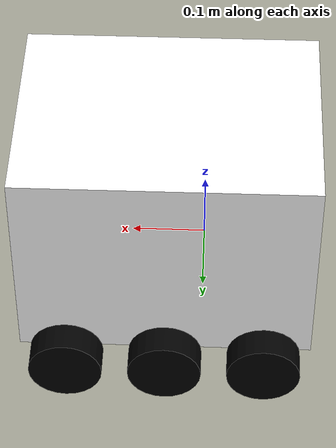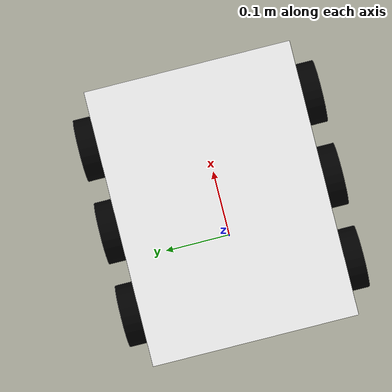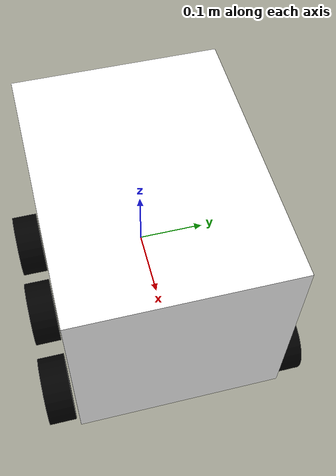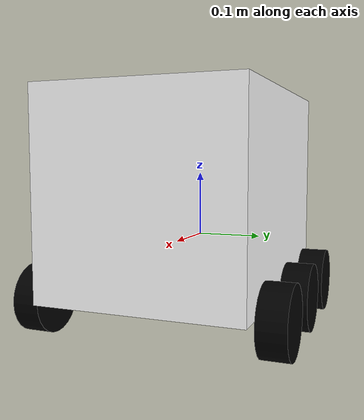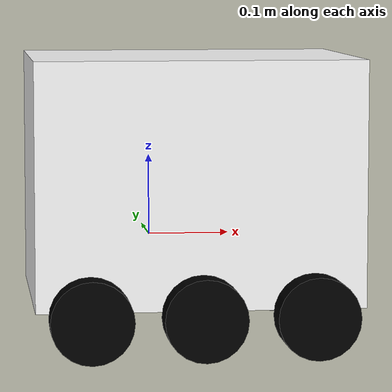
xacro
<?xml version="1.0"?>
<robot xmlns:xacro="http://www.ros.org/wiki/xacro">

    <xacro:include filename="inertial_macros.xacro"/>

    <material name="white">
        <color rgba="1 1 1 1" />
    </material>

    <material name="orange">
        <color rgba="1 0.3 0.1 1" />
    </material>

    <material name="blue">
        <color rgba="0.2 0.2 1 1" />
    </material>

    <material name="black">
        <color rgba="0 0 0 1"/>
    </material>

    <material name="red">
        <color rgba="1 0 0 1"/>
    </material>

    <material name="brown">
        <color rgba="0.6 0.2 0.2 1"/>
    </material>
    <material name="green">
        <color rgba="0 1 0 1"/>
    </material>

    <!-- Base link -->
    <link name="base_link">
    </link>

    <!-- Chassis link -->

    <joint name="chassis_joint" type="fixed">
        <parent link="base_link"/>
        <child link="chassis"/>
        <origin xyz="-0.1 0 0"/>
    </joint>

    <link name="chassis">
        <visual>
            <origin xyz="0.15 0 0.075"/>
            <geometry>
                <box size="0.4 0.3 0.3"/>
            </geometry>
            <material name="white"/>
        </visual>
        <collision>
            <origin xyz="0.15 0 0.075"/>
            <geometry>
                <box size="0.4 0.3 0.3"/>
            </geometry>
        </collision>
        <xacro:inertial_box mass = "0.5" x = "0.4" y="0.3" z = "0.3">
            <origin xyz = "0.15 0 0.075" rpy="0 0 0"/>
        </xacro:inertial_box>
    </link>

    <gazebo reference="chassis">
        <material>Gazebo/Red</material>
    </gazebo>

<!-- front_left wheel link -->

    <joint name="front_left_wheel_joint" type="continuous">
        <parent link="chassis"/>
        <child link="front_left_wheel"/>
        <origin xyz="0.285 0.175 -0.08" rpy="-${pi/2} 0 0"/>
        <axis xyz="0 0 1"/>
    </joint>

    <link name="front_left_wheel">
        <visual>
            <geometry>
                <cylinder radius="0.05" length="0.04"/>
            </geometry>
            <material name="black"/>
        </visual>

        <collision>
            <geometry>
                <cylinder radius="0.05" length="0.04"/>
            </geometry>
        </collision>
        <xacro:inertial_cylinder mass="0.1" length="0.04" radius="0.05">
            <origin xyz="0 0 0" rpy="0 0 0"/>
        </xacro:inertial_cylinder>

    </link>

    <gazebo reference="front_left_wheel">
        <material>Gazebo/Blue</material>
    </gazebo>

<!-- front Right wheel link -->

    <joint name="front_right_wheel_joint" type="continuous">
        <parent link="chassis"/>
        <child link="front_right_wheel"/>
        <origin xyz="0.285 -0.175 -0.08" rpy="${pi/2} 0 0"/>
        <axis xyz="0 0 -1"/>
    </joint>

    <link name="front_right_wheel">
        <visual>
            <geometry>
                <cylinder radius="0.05" length="0.04"/>
            </geometry>
            <material name="black"/>
        </visual>

        <collision>
            <geometry>
                <cylinder radius="0.05" length="0.04"/>
            </geometry>
        </collision>
        <xacro:inertial_cylinder mass="0.1" length="0.04" radius="0.05">
            <origin xyz="0 0 0" rpy="0 0 0"/>
        </xacro:inertial_cylinder>

    </link>

    <gazebo reference="front_right_wheel">
        <material>Gazebo/Blue</material>
    </gazebo>

    <!-- middle_left wheel link -->

    <joint name="middle_left_wheel_joint" type="continuous">
        <parent link="chassis"/>
        <child link="middle_left_wheel"/>
        <origin xyz="0.150 0.175 -0.08" rpy="-${pi/2} 0 0"/>
        <axis xyz="0 0 1"/>
    </joint>

    <link name="middle_left_wheel">
        <visual>
            <geometry>
                <cylinder radius="0.05" length="0.04"/>
            </geometry>
            <material name="black"/>
        </visual>

        <collision>
            <geometry>
                <cylinder radius="0.05" length="0.04"/>
            </geometry>
        </collision>
        <xacro:inertial_cylinder mass="0.1" length="0.04" radius="0.05">
            <origin xyz="0 0 0" rpy="0 0 0"/>
        </xacro:inertial_cylinder>

    </link>

    <gazebo reference="middle_left_wheel">
        <material>Gazebo/Blue</material>
    </gazebo>

<!-- middle Right wheel link -->

    <joint name="middle_right_wheel_joint" type="continuous">
        <parent link="chassis"/>
        <child link="middle_right_wheel"/>
        <origin xyz="0.150 -0.175 -0.08" rpy="${pi/2} 0 0"/>
        <axis xyz="0 0 -1"/>
    </joint>

    <link name="middle_right_wheel">
        <visual>
            <geometry>
                <cylinder radius="0.05" length="0.04"/>
            </geometry>
            <material name="black"/>
        </visual>

        <collision>
            <geometry>
                <cylinder radius="0.05" length="0.04"/>
            </geometry>
        </collision>
        <xacro:inertial_cylinder mass="0.1" length="0.04" radius="0.05">
            <origin xyz="0 0 0" rpy="0 0 0"/>
        </xacro:inertial_cylinder>

    </link>

    <gazebo reference="middle_right_wheel">
        <material>Gazebo/Blue</material>
    </gazebo>

<!-- back left wheel link -->

    <joint name="back_left_wheel_joint" type="continuous">
        <parent link="chassis"/>
        <child link="back_left_wheel"/>
        <origin xyz="0.015 0.175 -0.08" rpy="-${pi/2} 0 0"/>
        <axis xyz="0 0 1"/>
    </joint>

    <link name="back_left_wheel">
        <visual>
            <geometry>
                <cylinder radius="0.05" length="0.04"/>
            </geometry>
            <material name="black"/>
        </visual>

        <collision>
            <geometry>
                <cylinder radius="0.05" length="0.04"/>
            </geometry>
        </collision>
        <xacro:inertial_cylinder mass="0.1" length="0.04" radius="0.05">
            <origin xyz="0 0 0" rpy="0 0 0"/>
        </xacro:inertial_cylinder>

    </link>

    <gazebo reference="back_left_wheel">
        <material>Gazebo/Blue</material>
    </gazebo>

<!-- back Right wheel link -->

    <joint name="back_right_wheel_joint" type="continuous">
        <parent link="chassis"/>
        <child link="back_right_wheel"/>
        <origin xyz="0.015 -0.175 -0.08" rpy="${pi/2} 0 0"/>
        <axis xyz="0 0 -1"/>
    </joint>

    <link name="back_right_wheel">
        <visual>
            <geometry>
                <cylinder radius="0.05" length="0.04"/>
            </geometry>
            <material name="black"/>
        </visual>

        <collision>
            <geometry>
                <cylinder radius="0.05" length="0.04"/>
            </geometry>
        </collision>
        <xacro:inertial_cylinder mass="0.1" length="0.04" radius="0.05">
            <origin xyz="0 0 0" rpy="0 0 0"/>
        </xacro:inertial_cylinder>

    </link>

    <gazebo reference="back_right_wheel">
        <material>Gazebo/Blue</material>
    </gazebo>

</robot>

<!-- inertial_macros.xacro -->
<robot xmlns:xacro="http://www.ros.org/wiki/xacro" >

    <!-- Specify some standard inertial calculations https://en.wikipedia.org/wiki/List_of_moments_of_inertia -->
    <!-- These make use of xacro's mathematical functionality -->

    <xacro:macro name="inertial_box" params="mass x y z *origin">
        <inertial>
            <xacro:insert_block name="origin"/>
            <mass value="${mass}" />
            <inertia ixx="${(1/12) * mass * (y*y+z*z)}" ixy="0.0" ixz="0.0"
                    iyy="${(1/12) * mass * (x*x+z*z)}" iyz="0.0"
                    izz="${(1/12) * mass * (x*x+y*y)}" />
        </inertial>
    </xacro:macro>

    <xacro:macro name="inertial_cylinder" params="mass length radius *origin">
        <inertial>
            <xacro:insert_block name="origin"/>
            <mass value="${mass}" />
            <inertia ixx="${(1/12) * mass * (3*radius*radius + length*length)}" ixy="0.0" ixz="0.0"
                    iyy="${(1/12) * mass * (3*radius*radius + length*length)}" iyz="0.0"
                    izz="${(1/2) * mass * (radius*radius)}" />
        </inertial>
    </xacro:macro>

</robot>
